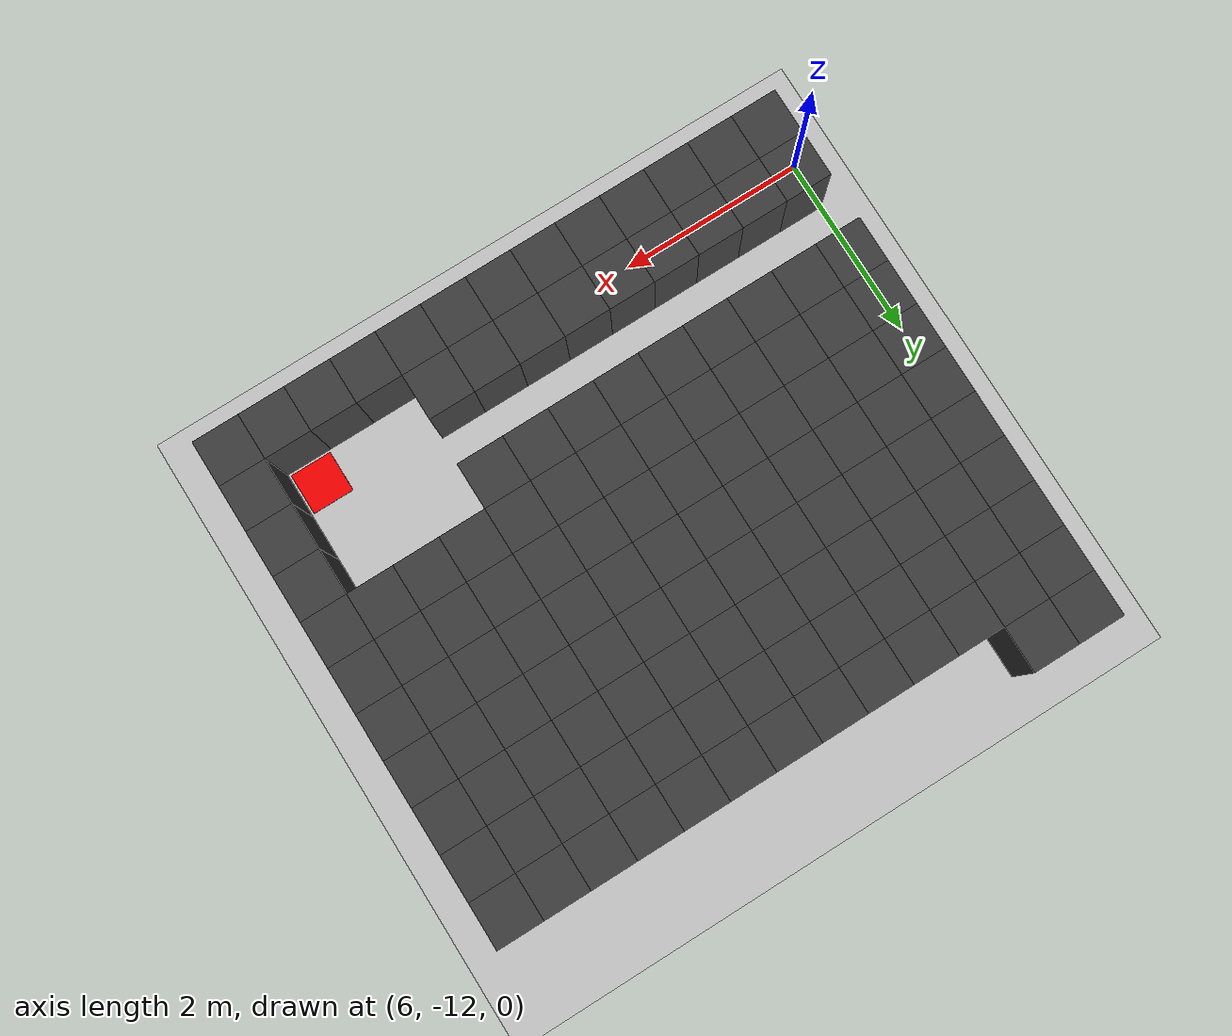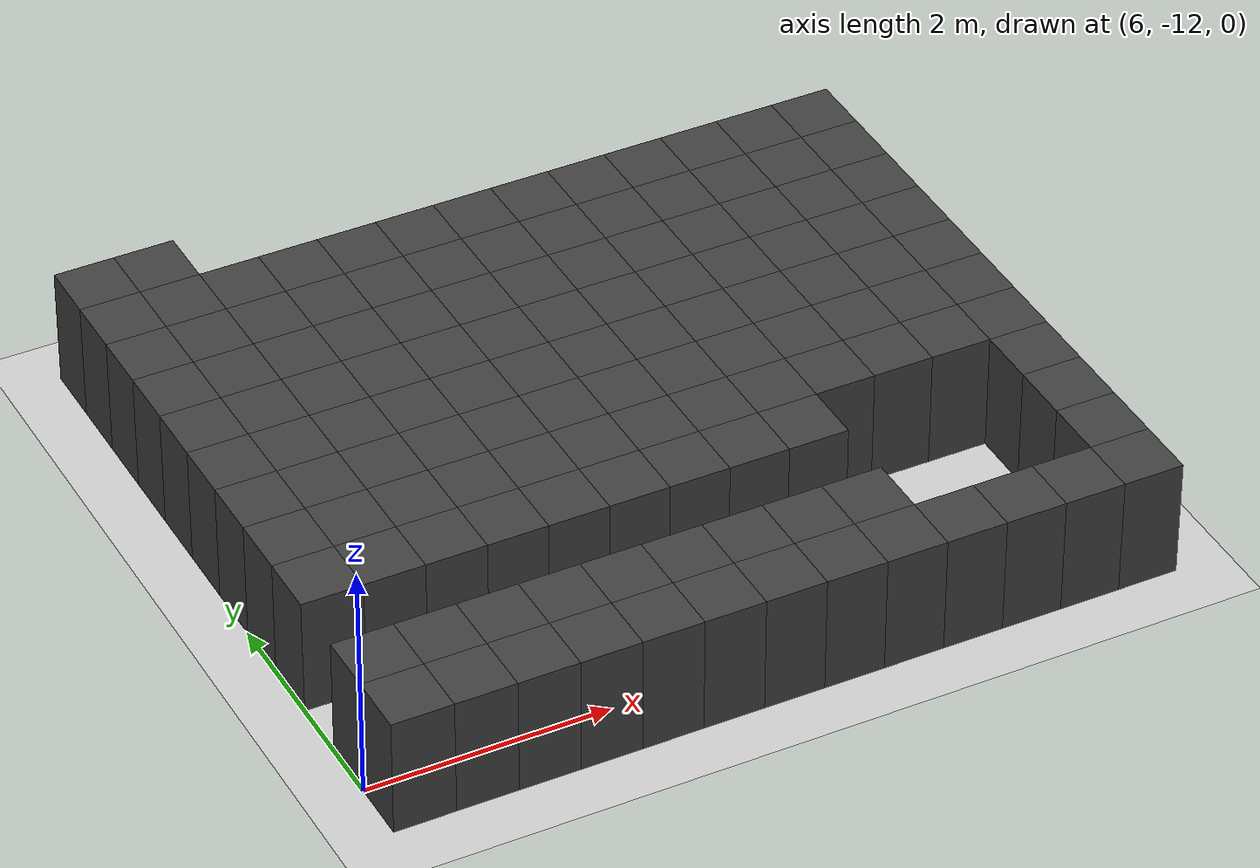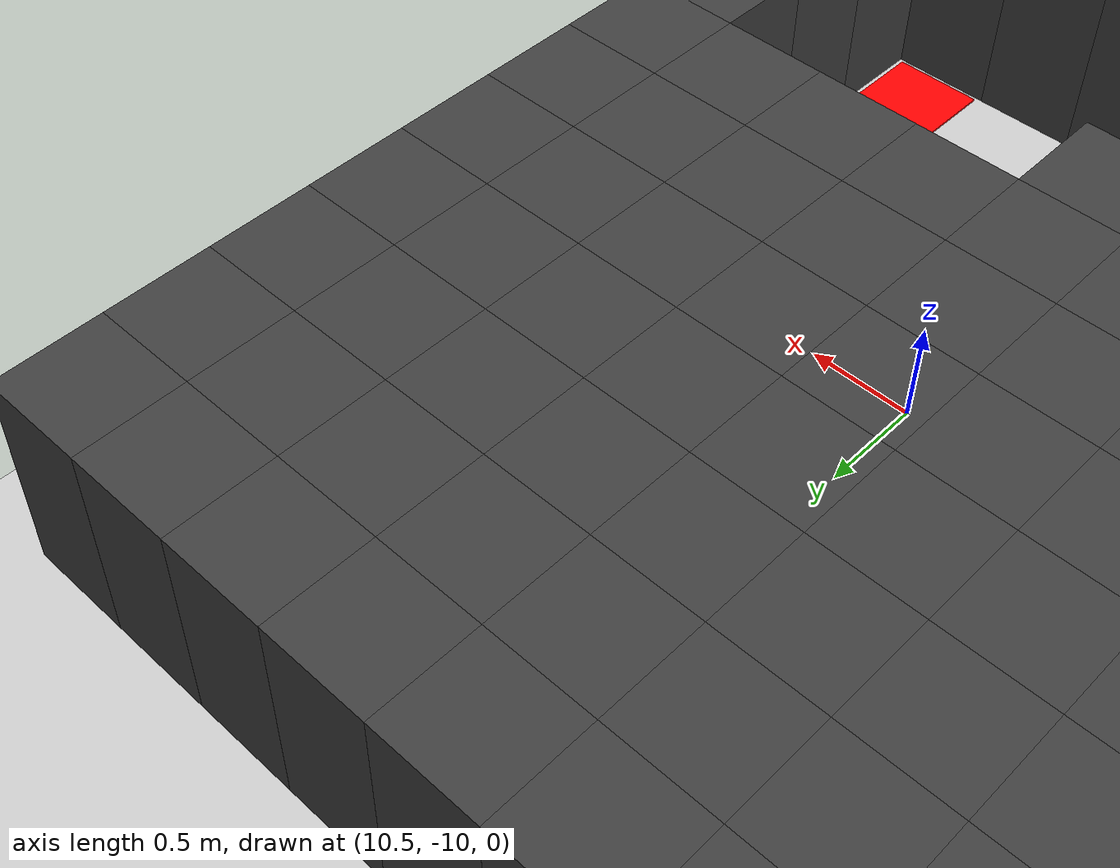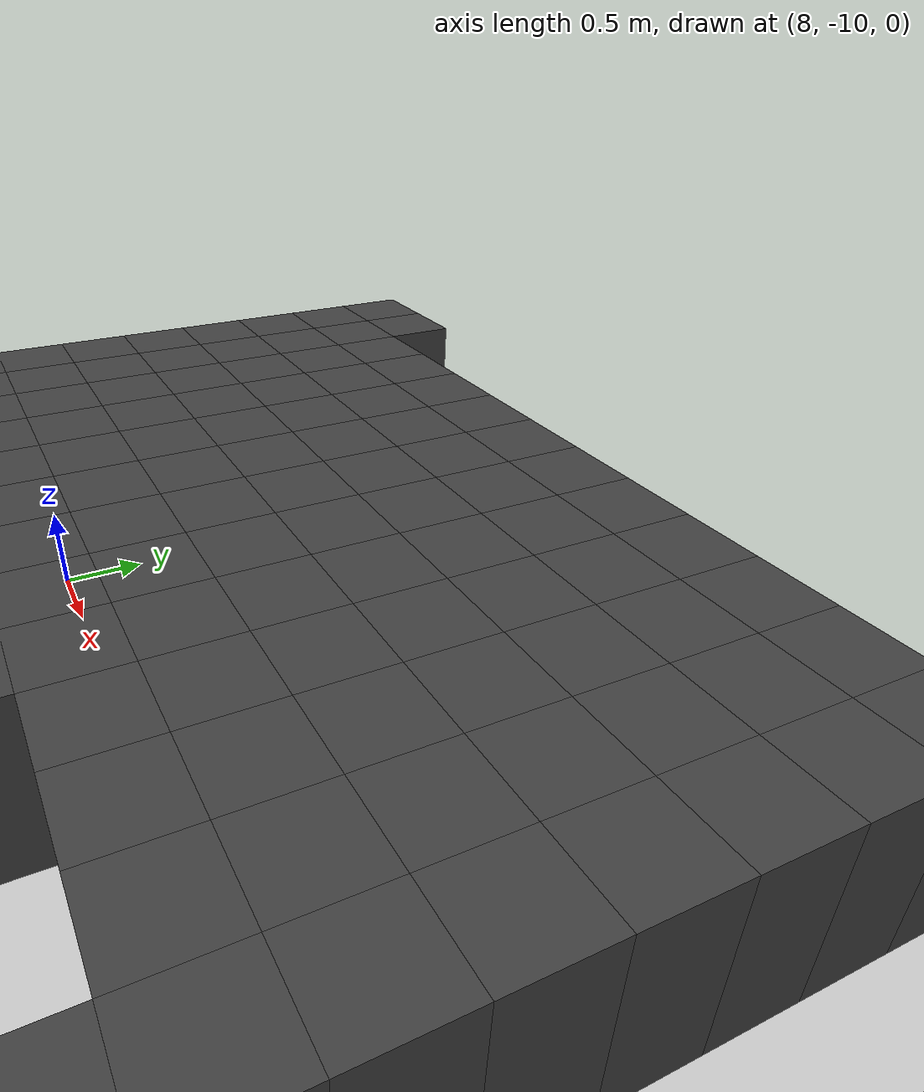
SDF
<sdf version="1.7">
 <world name="map_11515">
  <model name="ground_plane">
   <static>true</static>
   <link name="link">
    <collision name="collision">
     <geometry><plane><normal>0 0 1</normal><size>200 200</size></plane></geometry>
    </collision>
    <visual name="visual">
     <geometry><plane><normal>0 0 1</normal><size>200 200</size></plane></geometry>
     <material><ambient>0.8 0.8 0.8 1</ambient><diffuse>0.8 0.8 0.8 1</diffuse></material>
    </visual>
   </link>
  </model>
  <model name="maze_environment">
   <static>true</static>
   <link name="wall_1686">
    <pose>6.250 -6.750 0.500 0 0 0</pose>
    <collision name="col"><geometry><box><size>0.5 0.5 1.0</size></box></geometry></collision>
    <visual name="vis">
     <geometry><box><size>0.5 0.5 1.0</size></box></geometry>
     <material><ambient>0.15 0.15 0.15 1</ambient><diffuse>0.25 0.25 0.25 1</diffuse></material>
    </visual>
   </link>
   <link name="wall_1687">
    <pose>6.750 -6.750 0.500 0 0 0</pose>
    <collision name="col"><geometry><box><size>0.5 0.5 1.0</size></box></geometry></collision>
    <visual name="vis">
     <geometry><box><size>0.5 0.5 1.0</size></box></geometry>
     <material><ambient>0.15 0.15 0.15 1</ambient><diffuse>0.25 0.25 0.25 1</diffuse></material>
    </visual>
   </link>
   <link name="wall_1735">
    <pose>6.250 -7.250 0.500 0 0 0</pose>
    <collision name="col"><geometry><box><size>0.5 0.5 1.0</size></box></geometry></collision>
    <visual name="vis">
     <geometry><box><size>0.5 0.5 1.0</size></box></geometry>
     <material><ambient>0.15 0.15 0.15 1</ambient><diffuse>0.25 0.25 0.25 1</diffuse></material>
    </visual>
   </link>
   <link name="wall_1736">
    <pose>6.750 -7.250 0.500 0 0 0</pose>
    <collision name="col"><geometry><box><size>0.5 0.5 1.0</size></box></geometry></collision>
    <visual name="vis">
     <geometry><box><size>0.5 0.5 1.0</size></box></geometry>
     <material><ambient>0.15 0.15 0.15 1</ambient><diffuse>0.25 0.25 0.25 1</diffuse></material>
    </visual>
   </link>
   <link name="wall_1737">
    <pose>7.250 -7.250 0.500 0 0 0</pose>
    <collision name="col"><geometry><box><size>0.5 0.5 1.0</size></box></geometry></collision>
    <visual name="vis">
     <geometry><box><size>0.5 0.5 1.0</size></box></geometry>
     <material><ambient>0.15 0.15 0.15 1</ambient><diffuse>0.25 0.25 0.25 1</diffuse></material>
    </visual>
   </link>
   <link name="wall_1738">
    <pose>7.750 -7.250 0.500 0 0 0</pose>
    <collision name="col"><geometry><box><size>0.5 0.5 1.0</size></box></geometry></collision>
    <visual name="vis">
     <geometry><box><size>0.5 0.5 1.0</size></box></geometry>
     <material><ambient>0.15 0.15 0.15 1</ambient><diffuse>0.25 0.25 0.25 1</diffuse></material>
    </visual>
   </link>
   <link name="wall_1739">
    <pose>8.250 -7.250 0.500 0 0 0</pose>
    <collision name="col"><geometry><box><size>0.5 0.5 1.0</size></box></geometry></collision>
    <visual name="vis">
     <geometry><box><size>0.5 0.5 1.0</size></box></geometry>
     <material><ambient>0.15 0.15 0.15 1</ambient><diffuse>0.25 0.25 0.25 1</diffuse></material>
    </visual>
   </link>
   <link name="wall_1740">
    <pose>8.750 -7.250 0.500 0 0 0</pose>
    <collision name="col"><geometry><box><size>0.5 0.5 1.0</size></box></geometry></collision>
    <visual name="vis">
     <geometry><box><size>0.5 0.5 1.0</size></box></geometry>
     <material><ambient>0.15 0.15 0.15 1</ambient><diffuse>0.25 0.25 0.25 1</diffuse></material>
    </visual>
   </link>
   <link name="wall_1741">
    <pose>9.250 -7.250 0.500 0 0 0</pose>
    <collision name="col"><geometry><box><size>0.5 0.5 1.0</size></box></geometry></collision>
    <visual name="vis">
     <geometry><box><size>0.5 0.5 1.0</size></box></geometry>
     <material><ambient>0.15 0.15 0.15 1</ambient><diffuse>0.25 0.25 0.25 1</diffuse></material>
    </visual>
   </link>
   <link name="wall_1742">
    <pose>9.750 -7.250 0.500 0 0 0</pose>
    <collision name="col"><geometry><box><size>0.5 0.5 1.0</size></box></geometry></collision>
    <visual name="vis">
     <geometry><box><size>0.5 0.5 1.0</size></box></geometry>
     <material><ambient>0.15 0.15 0.15 1</ambient><diffuse>0.25 0.25 0.25 1</diffuse></material>
    </visual>
   </link>
   <link name="wall_1743">
    <pose>10.250 -7.250 0.500 0 0 0</pose>
    <collision name="col"><geometry><box><size>0.5 0.5 1.0</size></box></geometry></collision>
    <visual name="vis">
     <geometry><box><size>0.5 0.5 1.0</size></box></geometry>
     <material><ambient>0.15 0.15 0.15 1</ambient><diffuse>0.25 0.25 0.25 1</diffuse></material>
    </visual>
   </link>
   <link name="wall_1744">
    <pose>10.750 -7.250 0.500 0 0 0</pose>
    <collision name="col"><geometry><box><size>0.5 0.5 1.0</size></box></geometry></collision>
    <visual name="vis">
     <geometry><box><size>0.5 0.5 1.0</size></box></geometry>
     <material><ambient>0.15 0.15 0.15 1</ambient><diffuse>0.25 0.25 0.25 1</diffuse></material>
    </visual>
   </link>
   <link name="wall_1745">
    <pose>11.250 -7.250 0.500 0 0 0</pose>
    <collision name="col"><geometry><box><size>0.5 0.5 1.0</size></box></geometry></collision>
    <visual name="vis">
     <geometry><box><size>0.5 0.5 1.0</size></box></geometry>
     <material><ambient>0.15 0.15 0.15 1</ambient><diffuse>0.25 0.25 0.25 1</diffuse></material>
    </visual>
   </link>
   <link name="wall_1746">
    <pose>11.750 -7.250 0.500 0 0 0</pose>
    <collision name="col"><geometry><box><size>0.5 0.5 1.0</size></box></geometry></collision>
    <visual name="vis">
     <geometry><box><size>0.5 0.5 1.0</size></box></geometry>
     <material><ambient>0.15 0.15 0.15 1</ambient><diffuse>0.25 0.25 0.25 1</diffuse></material>
    </visual>
   </link>
   <link name="wall_1747">
    <pose>12.250 -7.250 0.500 0 0 0</pose>
    <collision name="col"><geometry><box><size>0.5 0.5 1.0</size></box></geometry></collision>
    <visual name="vis">
     <geometry><box><size>0.5 0.5 1.0</size></box></geometry>
     <material><ambient>0.15 0.15 0.15 1</ambient><diffuse>0.25 0.25 0.25 1</diffuse></material>
    </visual>
   </link>
   <link name="wall_1784">
    <pose>6.250 -7.750 0.500 0 0 0</pose>
    <collision name="col"><geometry><box><size>0.5 0.5 1.0</size></box></geometry></collision>
    <visual name="vis">
     <geometry><box><size>0.5 0.5 1.0</size></box></geometry>
     <material><ambient>0.15 0.15 0.15 1</ambient><diffuse>0.25 0.25 0.25 1</diffuse></material>
    </visual>
   </link>
   <link name="wall_1785">
    <pose>6.750 -7.750 0.500 0 0 0</pose>
    <collision name="col"><geometry><box><size>0.5 0.5 1.0</size></box></geometry></collision>
    <visual name="vis">
     <geometry><box><size>0.5 0.5 1.0</size></box></geometry>
     <material><ambient>0.15 0.15 0.15 1</ambient><diffuse>0.25 0.25 0.25 1</diffuse></material>
    </visual>
   </link>
   <link name="wall_1786">
    <pose>7.250 -7.750 0.500 0 0 0</pose>
    <collision name="col"><geometry><box><size>0.5 0.5 1.0</size></box></geometry></collision>
    <visual name="vis">
     <geometry><box><size>0.5 0.5 1.0</size></box></geometry>
     <material><ambient>0.15 0.15 0.15 1</ambient><diffuse>0.25 0.25 0.25 1</diffuse></material>
    </visual>
   </link>
   <link name="wall_1787">
    <pose>7.750 -7.750 0.500 0 0 0</pose>
    <collision name="col"><geometry><box><size>0.5 0.5 1.0</size></box></geometry></collision>
    <visual name="vis">
     <geometry><box><size>0.5 0.5 1.0</size></box></geometry>
     <material><ambient>0.15 0.15 0.15 1</ambient><diffuse>0.25 0.25 0.25 1</diffuse></material>
    </visual>
   </link>
   <link name="wall_1788">
    <pose>8.250 -7.750 0.500 0 0 0</pose>
    <collision name="col"><geometry><box><size>0.5 0.5 1.0</size></box></geometry></collision>
    <visual name="vis">
     <geometry><box><size>0.5 0.5 1.0</size></box></geometry>
     <material><ambient>0.15 0.15 0.15 1</ambient><diffuse>0.25 0.25 0.25 1</diffuse></material>
    </visual>
   </link>
   <link name="wall_1789">
    <pose>8.750 -7.750 0.500 0 0 0</pose>
    <collision name="col"><geometry><box><size>0.5 0.5 1.0</size></box></geometry></collision>
    <visual name="vis">
     <geometry><box><size>0.5 0.5 1.0</size></box></geometry>
     <material><ambient>0.15 0.15 0.15 1</ambient><diffuse>0.25 0.25 0.25 1</diffuse></material>
    </visual>
   </link>
   <link name="wall_1790">
    <pose>9.250 -7.750 0.500 0 0 0</pose>
    <collision name="col"><geometry><box><size>0.5 0.5 1.0</size></box></geometry></collision>
    <visual name="vis">
     <geometry><box><size>0.5 0.5 1.0</size></box></geometry>
     <material><ambient>0.15 0.15 0.15 1</ambient><diffuse>0.25 0.25 0.25 1</diffuse></material>
    </visual>
   </link>
   <link name="wall_1791">
    <pose>9.750 -7.750 0.500 0 0 0</pose>
    <collision name="col"><geometry><box><size>0.5 0.5 1.0</size></box></geometry></collision>
    <visual name="vis">
     <geometry><box><size>0.5 0.5 1.0</size></box></geometry>
     <material><ambient>0.15 0.15 0.15 1</ambient><diffuse>0.25 0.25 0.25 1</diffuse></material>
    </visual>
   </link>
   <link name="wall_1792">
    <pose>10.250 -7.750 0.500 0 0 0</pose>
    <collision name="col"><geometry><box><size>0.5 0.5 1.0</size></box></geometry></collision>
    <visual name="vis">
     <geometry><box><size>0.5 0.5 1.0</size></box></geometry>
     <material><ambient>0.15 0.15 0.15 1</ambient><diffuse>0.25 0.25 0.25 1</diffuse></material>
    </visual>
   </link>
   <link name="wall_1793">
    <pose>10.750 -7.750 0.500 0 0 0</pose>
    <collision name="col"><geometry><box><size>0.5 0.5 1.0</size></box></geometry></collision>
    <visual name="vis">
     <geometry><box><size>0.5 0.5 1.0</size></box></geometry>
     <material><ambient>0.15 0.15 0.15 1</ambient><diffuse>0.25 0.25 0.25 1</diffuse></material>
    </visual>
   </link>
   <link name="wall_1794">
    <pose>11.250 -7.750 0.500 0 0 0</pose>
    <collision name="col"><geometry><box><size>0.5 0.5 1.0</size></box></geometry></collision>
    <visual name="vis">
     <geometry><box><size>0.5 0.5 1.0</size></box></geometry>
     <material><ambient>0.15 0.15 0.15 1</ambient><diffuse>0.25 0.25 0.25 1</diffuse></material>
    </visual>
   </link>
   <link name="wall_1795">
    <pose>11.750 -7.750 0.500 0 0 0</pose>
    <collision name="col"><geometry><box><size>0.5 0.5 1.0</size></box></geometry></collision>
    <visual name="vis">
     <geometry><box><size>0.5 0.5 1.0</size></box></geometry>
     <material><ambient>0.15 0.15 0.15 1</ambient><diffuse>0.25 0.25 0.25 1</diffuse></material>
    </visual>
   </link>
   <link name="wall_1796">
    <pose>12.250 -7.750 0.500 0 0 0</pose>
    <collision name="col"><geometry><box><size>0.5 0.5 1.0</size></box></geometry></collision>
    <visual name="vis">
     <geometry><box><size>0.5 0.5 1.0</size></box></geometry>
     <material><ambient>0.15 0.15 0.15 1</ambient><diffuse>0.25 0.25 0.25 1</diffuse></material>
    </visual>
   </link>
   <link name="wall_1833">
    <pose>6.250 -8.250 0.500 0 0 0</pose>
    <collision name="col"><geometry><box><size>0.5 0.5 1.0</size></box></geometry></collision>
    <visual name="vis">
     <geometry><box><size>0.5 0.5 1.0</size></box></geometry>
     <material><ambient>0.15 0.15 0.15 1</ambient><diffuse>0.25 0.25 0.25 1</diffuse></material>
    </visual>
   </link>
   <link name="wall_1834">
    <pose>6.750 -8.250 0.500 0 0 0</pose>
    <collision name="col"><geometry><box><size>0.5 0.5 1.0</size></box></geometry></collision>
    <visual name="vis">
     <geometry><box><size>0.5 0.5 1.0</size></box></geometry>
     <material><ambient>0.15 0.15 0.15 1</ambient><diffuse>0.25 0.25 0.25 1</diffuse></material>
    </visual>
   </link>
   <link name="wall_1835">
    <pose>7.250 -8.250 0.500 0 0 0</pose>
    <collision name="col"><geometry><box><size>0.5 0.5 1.0</size></box></geometry></collision>
    <visual name="vis">
     <geometry><box><size>0.5 0.5 1.0</size></box></geometry>
     <material><ambient>0.15 0.15 0.15 1</ambient><diffuse>0.25 0.25 0.25 1</diffuse></material>
    </visual>
   </link>
   <link name="wall_1836">
    <pose>7.750 -8.250 0.500 0 0 0</pose>
    <collision name="col"><geometry><box><size>0.5 0.5 1.0</size></box></geometry></collision>
    <visual name="vis">
     <geometry><box><size>0.5 0.5 1.0</size></box></geometry>
     <material><ambient>0.15 0.15 0.15 1</ambient><diffuse>0.25 0.25 0.25 1</diffuse></material>
    </visual>
   </link>
   <link name="wall_1837">
    <pose>8.250 -8.250 0.500 0 0 0</pose>
    <collision name="col"><geometry><box><size>0.5 0.5 1.0</size></box></geometry></collision>
    <visual name="vis">
     <geometry><box><size>0.5 0.5 1.0</size></box></geometry>
     <material><ambient>0.15 0.15 0.15 1</ambient><diffuse>0.25 0.25 0.25 1</diffuse></material>
    </visual>
   </link>
   <link name="wall_1838">
    <pose>8.750 -8.250 0.500 0 0 0</pose>
    <collision name="col"><geometry><box><size>0.5 0.5 1.0</size></box></geometry></collision>
    <visual name="vis">
     <geometry><box><size>0.5 0.5 1.0</size></box></geometry>
     <material><ambient>0.15 0.15 0.15 1</ambient><diffuse>0.25 0.25 0.25 1</diffuse></material>
    </visual>
   </link>
   <link name="wall_1839">
    <pose>9.250 -8.250 0.500 0 0 0</pose>
    <collision name="col"><geometry><box><size>0.5 0.5 1.0</size></box></geometry></collision>
    <visual name="vis">
     <geometry><box><size>0.5 0.5 1.0</size></box></geometry>
     <material><ambient>0.15 0.15 0.15 1</ambient><diffuse>0.25 0.25 0.25 1</diffuse></material>
    </visual>
   </link>
   <link name="wall_1840">
    <pose>9.750 -8.250 0.500 0 0 0</pose>
    <collision name="col"><geometry><box><size>0.5 0.5 1.0</size></box></geometry></collision>
    <visual name="vis">
     <geometry><box><size>0.5 0.5 1.0</size></box></geometry>
     <material><ambient>0.15 0.15 0.15 1</ambient><diffuse>0.25 0.25 0.25 1</diffuse></material>
    </visual>
   </link>
   <link name="wall_1841">
    <pose>10.250 -8.250 0.500 0 0 0</pose>
    <collision name="col"><geometry><box><size>0.5 0.5 1.0</size></box></geometry></collision>
    <visual name="vis">
     <geometry><box><size>0.5 0.5 1.0</size></box></geometry>
     <material><ambient>0.15 0.15 0.15 1</ambient><diffuse>0.25 0.25 0.25 1</diffuse></material>
    </visual>
   </link>
   <link name="wall_1842">
    <pose>10.750 -8.250 0.500 0 0 0</pose>
    <collision name="col"><geometry><box><size>0.5 0.5 1.0</size></box></geometry></collision>
    <visual name="vis">
     <geometry><box><size>0.5 0.5 1.0</size></box></geometry>
     <material><ambient>0.15 0.15 0.15 1</ambient><diffuse>0.25 0.25 0.25 1</diffuse></material>
    </visual>
   </link>
   <link name="wall_1843">
    <pose>11.250 -8.250 0.500 0 0 0</pose>
    <collision name="col"><geometry><box><size>0.5 0.5 1.0</size></box></geometry></collision>
    <visual name="vis">
     <geometry><box><size>0.5 0.5 1.0</size></box></geometry>
     <material><ambient>0.15 0.15 0.15 1</ambient><diffuse>0.25 0.25 0.25 1</diffuse></material>
    </visual>
   </link>
   <link name="wall_1844">
    <pose>11.750 -8.250 0.500 0 0 0</pose>
    <collision name="col"><geometry><box><size>0.5 0.5 1.0</size></box></geometry></collision>
    <visual name="vis">
     <geometry><box><size>0.5 0.5 1.0</size></box></geometry>
     <material><ambient>0.15 0.15 0.15 1</ambient><diffuse>0.25 0.25 0.25 1</diffuse></material>
    </visual>
   </link>
   <link name="wall_1845">
    <pose>12.250 -8.250 0.500 0 0 0</pose>
    <collision name="col"><geometry><box><size>0.5 0.5 1.0</size></box></geometry></collision>
    <visual name="vis">
     <geometry><box><size>0.5 0.5 1.0</size></box></geometry>
     <material><ambient>0.15 0.15 0.15 1</ambient><diffuse>0.25 0.25 0.25 1</diffuse></material>
    </visual>
   </link>
   <link name="wall_1876">
    <pose>6.250 -8.750 0.500 0 0 0</pose>
    <collision name="col"><geometry><box><size>0.5 0.5 1.0</size></box></geometry></collision>
    <visual name="vis">
     <geometry><box><size>0.5 0.5 1.0</size></box></geometry>
     <material><ambient>0.15 0.15 0.15 1</ambient><diffuse>0.25 0.25 0.25 1</diffuse></material>
    </visual>
   </link>
   <link name="wall_1877">
    <pose>6.750 -8.750 0.500 0 0 0</pose>
    <collision name="col"><geometry><box><size>0.5 0.5 1.0</size></box></geometry></collision>
    <visual name="vis">
     <geometry><box><size>0.5 0.5 1.0</size></box></geometry>
     <material><ambient>0.15 0.15 0.15 1</ambient><diffuse>0.25 0.25 0.25 1</diffuse></material>
    </visual>
   </link>
   <link name="wall_1878">
    <pose>7.250 -8.750 0.500 0 0 0</pose>
    <collision name="col"><geometry><box><size>0.5 0.5 1.0</size></box></geometry></collision>
    <visual name="vis">
     <geometry><box><size>0.5 0.5 1.0</size></box></geometry>
     <material><ambient>0.15 0.15 0.15 1</ambient><diffuse>0.25 0.25 0.25 1</diffuse></material>
    </visual>
   </link>
   <link name="wall_1879">
    <pose>7.750 -8.750 0.500 0 0 0</pose>
    <collision name="col"><geometry><box><size>0.5 0.5 1.0</size></box></geometry></collision>
    <visual name="vis">
     <geometry><box><size>0.5 0.5 1.0</size></box></geometry>
     <material><ambient>0.15 0.15 0.15 1</ambient><diffuse>0.25 0.25 0.25 1</diffuse></material>
    </visual>
   </link>
   <link name="wall_1880">
    <pose>8.250 -8.750 0.500 0 0 0</pose>
    <collision name="col"><geometry><box><size>0.5 0.5 1.0</size></box></geometry></collision>
    <visual name="vis">
     <geometry><box><size>0.5 0.5 1.0</size></box></geometry>
     <material><ambient>0.15 0.15 0.15 1</ambient><diffuse>0.25 0.25 0.25 1</diffuse></material>
    </visual>
   </link>
   <link name="wall_1881">
    <pose>8.750 -8.750 0.500 0 0 0</pose>
    <collision name="col"><geometry><box><size>0.5 0.5 1.0</size></box></geometry></collision>
    <visual name="vis">
     <geometry><box><size>0.5 0.5 1.0</size></box></geometry>
     <material><ambient>0.15 0.15 0.15 1</ambient><diffuse>0.25 0.25 0.25 1</diffuse></material>
    </visual>
   </link>
   <link name="wall_1882">
    <pose>9.250 -8.750 0.500 0 0 0</pose>
    <collision name="col"><geometry><box><size>0.5 0.5 1.0</size></box></geometry></collision>
    <visual name="vis">
     <geometry><box><size>0.5 0.5 1.0</size></box></geometry>
     <material><ambient>0.15 0.15 0.15 1</ambient><diffuse>0.25 0.25 0.25 1</diffuse></material>
    </visual>
   </link>
   <link name="wall_1883">
    <pose>9.750 -8.750 0.500 0 0 0</pose>
    <collision name="col"><geometry><box><size>0.5 0.5 1.0</size></box></geometry></collision>
    <visual name="vis">
     <geometry><box><size>0.5 0.5 1.0</size></box></geometry>
     <material><ambient>0.15 0.15 0.15 1</ambient><diffuse>0.25 0.25 0.25 1</diffuse></material>
    </visual>
   </link>
   <link name="wall_1884">
    <pose>10.250 -8.750 0.500 0 0 0</pose>
    <collision name="col"><geometry><box><size>0.5 0.5 1.0</size></box></geometry></collision>
    <visual name="vis">
     <geometry><box><size>0.5 0.5 1.0</size></box></geometry>
     <material><ambient>0.15 0.15 0.15 1</ambient><diffuse>0.25 0.25 0.25 1</diffuse></material>
    </visual>
   </link>
   <link name="wall_1885">
    <pose>10.750 -8.750 0.500 0 0 0</pose>
    <collision name="col"><geometry><box><size>0.5 0.5 1.0</size></box></geometry></collision>
    <visual name="vis">
     <geometry><box><size>0.5 0.5 1.0</size></box></geometry>
     <material><ambient>0.15 0.15 0.15 1</ambient><diffuse>0.25 0.25 0.25 1</diffuse></material>
    </visual>
   </link>
   <link name="wall_1886">
    <pose>11.250 -8.750 0.500 0 0 0</pose>
    <collision name="col"><geometry><box><size>0.5 0.5 1.0</size></box></geometry></collision>
    <visual name="vis">
     <geometry><box><size>0.5 0.5 1.0</size></box></geometry>
     <material><ambient>0.15 0.15 0.15 1</ambient><diffuse>0.25 0.25 0.25 1</diffuse></material>
    </visual>
   </link>
   <link name="wall_1887">
    <pose>11.750 -8.750 0.500 0 0 0</pose>
    <collision name="col"><geometry><box><size>0.5 0.5 1.0</size></box></geometry></collision>
    <visual name="vis">
     <geometry><box><size>0.5 0.5 1.0</size></box></geometry>
     <material><ambient>0.15 0.15 0.15 1</ambient><diffuse>0.25 0.25 0.25 1</diffuse></material>
    </visual>
   </link>
   <link name="wall_1888">
    <pose>12.250 -8.750 0.500 0 0 0</pose>
    <collision name="col"><geometry><box><size>0.5 0.5 1.0</size></box></geometry></collision>
    <visual name="vis">
     <geometry><box><size>0.5 0.5 1.0</size></box></geometry>
     <material><ambient>0.15 0.15 0.15 1</ambient><diffuse>0.25 0.25 0.25 1</diffuse></material>
    </visual>
   </link>
   <link name="wall_1919">
    <pose>6.250 -9.250 0.500 0 0 0</pose>
    <collision name="col"><geometry><box><size>0.5 0.5 1.0</size></box></geometry></collision>
    <visual name="vis">
     <geometry><box><size>0.5 0.5 1.0</size></box></geometry>
     <material><ambient>0.15 0.15 0.15 1</ambient><diffuse>0.25 0.25 0.25 1</diffuse></material>
    </visual>
   </link>
   <link name="wall_1920">
    <pose>6.750 -9.250 0.500 0 0 0</pose>
    <collision name="col"><geometry><box><size>0.5 0.5 1.0</size></box></geometry></collision>
    <visual name="vis">
     <geometry><box><size>0.5 0.5 1.0</size></box></geometry>
     <material><ambient>0.15 0.15 0.15 1</ambient><diffuse>0.25 0.25 0.25 1</diffuse></material>
    </visual>
   </link>
   <link name="wall_1921">
    <pose>7.250 -9.250 0.500 0 0 0</pose>
    <collision name="col"><geometry><box><size>0.5 0.5 1.0</size></box></geometry></collision>
    <visual name="vis">
     <geometry><box><size>0.5 0.5 1.0</size></box></geometry>
     <material><ambient>0.15 0.15 0.15 1</ambient><diffuse>0.25 0.25 0.25 1</diffuse></material>
    </visual>
   </link>
   <link name="wall_1922">
    <pose>7.750 -9.250 0.500 0 0 0</pose>
    <collision name="col"><geometry><box><size>0.5 0.5 1.0</size></box></geometry></collision>
    <visual name="vis">
     <geometry><box><size>0.5 0.5 1.0</size></box></geometry>
     <material><ambient>0.15 0.15 0.15 1</ambient><diffuse>0.25 0.25 0.25 1</diffuse></material>
    </visual>
   </link>
   <link name="wall_1923">
    <pose>8.250 -9.250 0.500 0 0 0</pose>
    <collision name="col"><geometry><box><size>0.5 0.5 1.0</size></box></geometry></collision>
    <visual name="vis">
     <geometry><box><size>0.5 0.5 1.0</size></box></geometry>
     <material><ambient>0.15 0.15 0.15 1</ambient><diffuse>0.25 0.25 0.25 1</diffuse></material>
    </visual>
   </link>
   <link name="wall_1924">
    <pose>8.750 -9.250 0.500 0 0 0</pose>
    <collision name="col"><geometry><box><size>0.5 0.5 1.0</size></box></geometry></collision>
    <visual name="vis">
     <geometry><box><size>0.5 0.5 1.0</size></box></geometry>
     <material><ambient>0.15 0.15 0.15 1</ambient><diffuse>0.25 0.25 0.25 1</diffuse></material>
    </visual>
   </link>
   <link name="wall_1925">
    <pose>9.250 -9.250 0.500 0 0 0</pose>
    <collision name="col"><geometry><box><size>0.5 0.5 1.0</size></box></geometry></collision>
    <visual name="vis">
     <geometry><box><size>0.5 0.5 1.0</size></box></geometry>
     <material><ambient>0.15 0.15 0.15 1</ambient><diffuse>0.25 0.25 0.25 1</diffuse></material>
    </visual>
   </link>
   <link name="wall_1926">
    <pose>9.750 -9.250 0.500 0 0 0</pose>
    <collision name="col"><geometry><box><size>0.5 0.5 1.0</size></box></geometry></collision>
    <visual name="vis">
     <geometry><box><size>0.5 0.5 1.0</size></box></geometry>
     <material><ambient>0.15 0.15 0.15 1</ambient><diffuse>0.25 0.25 0.25 1</diffuse></material>
    </visual>
   </link>
   <link name="wall_1927">
    <pose>10.250 -9.250 0.500 0 0 0</pose>
    <collision name="col"><geometry><box><size>0.5 0.5 1.0</size></box></geometry></collision>
    <visual name="vis">
     <geometry><box><size>0.5 0.5 1.0</size></box></geometry>
     <material><ambient>0.15 0.15 0.15 1</ambient><diffuse>0.25 0.25 0.25 1</diffuse></material>
    </visual>
   </link>
   <link name="wall_1928">
    <pose>10.750 -9.250 0.500 0 0 0</pose>
    <collision name="col"><geometry><box><size>0.5 0.5 1.0</size></box></geometry></collision>
    <visual name="vis">
     <geometry><box><size>0.5 0.5 1.0</size></box></geometry>
     <material><ambient>0.15 0.15 0.15 1</ambient><diffuse>0.25 0.25 0.25 1</diffuse></material>
    </visual>
   </link>
   <link name="wall_1929">
    <pose>11.250 -9.250 0.500 0 0 0</pose>
    <collision name="col"><geometry><box><size>0.5 0.5 1.0</size></box></geometry></collision>
    <visual name="vis">
     <geometry><box><size>0.5 0.5 1.0</size></box></geometry>
     <material><ambient>0.15 0.15 0.15 1</ambient><diffuse>0.25 0.25 0.25 1</diffuse></material>
    </visual>
   </link>
   <link name="wall_1930">
    <pose>11.750 -9.250 0.500 0 0 0</pose>
    <collision name="col"><geometry><box><size>0.5 0.5 1.0</size></box></geometry></collision>
    <visual name="vis">
     <geometry><box><size>0.5 0.5 1.0</size></box></geometry>
     <material><ambient>0.15 0.15 0.15 1</ambient><diffuse>0.25 0.25 0.25 1</diffuse></material>
    </visual>
   </link>
   <link name="wall_1931">
    <pose>12.250 -9.250 0.500 0 0 0</pose>
    <collision name="col"><geometry><box><size>0.5 0.5 1.0</size></box></geometry></collision>
    <visual name="vis">
     <geometry><box><size>0.5 0.5 1.0</size></box></geometry>
     <material><ambient>0.15 0.15 0.15 1</ambient><diffuse>0.25 0.25 0.25 1</diffuse></material>
    </visual>
   </link>
   <link name="wall_1961">
    <pose>6.250 -9.750 0.500 0 0 0</pose>
    <collision name="col"><geometry><box><size>0.5 0.5 1.0</size></box></geometry></collision>
    <visual name="vis">
     <geometry><box><size>0.5 0.5 1.0</size></box></geometry>
     <material><ambient>0.15 0.15 0.15 1</ambient><diffuse>0.25 0.25 0.25 1</diffuse></material>
    </visual>
   </link>
   <link name="wall_1962">
    <pose>6.750 -9.750 0.500 0 0 0</pose>
    <collision name="col"><geometry><box><size>0.5 0.5 1.0</size></box></geometry></collision>
    <visual name="vis">
     <geometry><box><size>0.5 0.5 1.0</size></box></geometry>
     <material><ambient>0.15 0.15 0.15 1</ambient><diffuse>0.25 0.25 0.25 1</diffuse></material>
    </visual>
   </link>
   <link name="wall_1963">
    <pose>7.250 -9.750 0.500 0 0 0</pose>
    <collision name="col"><geometry><box><size>0.5 0.5 1.0</size></box></geometry></collision>
    <visual name="vis">
     <geometry><box><size>0.5 0.5 1.0</size></box></geometry>
     <material><ambient>0.15 0.15 0.15 1</ambient><diffuse>0.25 0.25 0.25 1</diffuse></material>
    </visual>
   </link>
   <link name="wall_1964">
    <pose>7.750 -9.750 0.500 0 0 0</pose>
    <collision name="col"><geometry><box><size>0.5 0.5 1.0</size></box></geometry></collision>
    <visual name="vis">
     <geometry><box><size>0.5 0.5 1.0</size></box></geometry>
     <material><ambient>0.15 0.15 0.15 1</ambient><diffuse>0.25 0.25 0.25 1</diffuse></material>
    </visual>
   </link>
   <link name="wall_1965">
    <pose>8.250 -9.750 0.500 0 0 0</pose>
    <collision name="col"><geometry><box><size>0.5 0.5 1.0</size></box></geometry></collision>
    <visual name="vis">
     <geometry><box><size>0.5 0.5 1.0</size></box></geometry>
     <material><ambient>0.15 0.15 0.15 1</ambient><diffuse>0.25 0.25 0.25 1</diffuse></material>
    </visual>
   </link>
   <link name="wall_1966">
    <pose>8.750 -9.750 0.500 0 0 0</pose>
    <collision name="col"><geometry><box><size>0.5 0.5 1.0</size></box></geometry></collision>
    <visual name="vis">
     <geometry><box><size>0.5 0.5 1.0</size></box></geometry>
     <material><ambient>0.15 0.15 0.15 1</ambient><diffuse>0.25 0.25 0.25 1</diffuse></material>
    </visual>
   </link>
   <link name="wall_1967">
    <pose>9.250 -9.750 0.500 0 0 0</pose>
    <collision name="col"><geometry><box><size>0.5 0.5 1.0</size></box></geometry></collision>
    <visual name="vis">
     <geometry><box><size>0.5 0.5 1.0</size></box></geometry>
     <material><ambient>0.15 0.15 0.15 1</ambient><diffuse>0.25 0.25 0.25 1</diffuse></material>
    </visual>
   </link>
   <link name="wall_1968">
    <pose>9.750 -9.750 0.500 0 0 0</pose>
    <collision name="col"><geometry><box><size>0.5 0.5 1.0</size></box></geometry></collision>
    <visual name="vis">
     <geometry><box><size>0.5 0.5 1.0</size></box></geometry>
     <material><ambient>0.15 0.15 0.15 1</ambient><diffuse>0.25 0.25 0.25 1</diffuse></material>
    </visual>
   </link>
   <link name="wall_1969">
    <pose>10.250 -9.750 0.500 0 0 0</pose>
    <collision name="col"><geometry><box><size>0.5 0.5 1.0</size></box></geometry></collision>
    <visual name="vis">
     <geometry><box><size>0.5 0.5 1.0</size></box></geometry>
     <material><ambient>0.15 0.15 0.15 1</ambient><diffuse>0.25 0.25 0.25 1</diffuse></material>
    </visual>
   </link>
   <link name="wall_1970">
    <pose>10.750 -9.750 0.500 0 0 0</pose>
    <collision name="col"><geometry><box><size>0.5 0.5 1.0</size></box></geometry></collision>
    <visual name="vis">
     <geometry><box><size>0.5 0.5 1.0</size></box></geometry>
     <material><ambient>0.15 0.15 0.15 1</ambient><diffuse>0.25 0.25 0.25 1</diffuse></material>
    </visual>
   </link>
   <link name="wall_1971">
    <pose>11.250 -9.750 0.500 0 0 0</pose>
    <collision name="col"><geometry><box><size>0.5 0.5 1.0</size></box></geometry></collision>
    <visual name="vis">
     <geometry><box><size>0.5 0.5 1.0</size></box></geometry>
     <material><ambient>0.15 0.15 0.15 1</ambient><diffuse>0.25 0.25 0.25 1</diffuse></material>
    </visual>
   </link>
   <link name="wall_1972">
    <pose>11.750 -9.750 0.500 0 0 0</pose>
    <collision name="col"><geometry><box><size>0.5 0.5 1.0</size></box></geometry></collision>
    <visual name="vis">
     <geometry><box><size>0.5 0.5 1.0</size></box></geometry>
     <material><ambient>0.15 0.15 0.15 1</ambient><diffuse>0.25 0.25 0.25 1</diffuse></material>
    </visual>
   </link>
   <link name="wall_1973">
    <pose>12.250 -9.750 0.500 0 0 0</pose>
    <collision name="col"><geometry><box><size>0.5 0.5 1.0</size></box></geometry></collision>
    <visual name="vis">
     <geometry><box><size>0.5 0.5 1.0</size></box></geometry>
     <material><ambient>0.15 0.15 0.15 1</ambient><diffuse>0.25 0.25 0.25 1</diffuse></material>
    </visual>
   </link>
   <link name="wall_2005">
    <pose>6.250 -10.250 0.500 0 0 0</pose>
    <collision name="col"><geometry><box><size>0.5 0.5 1.0</size></box></geometry></collision>
    <visual name="vis">
     <geometry><box><size>0.5 0.5 1.0</size></box></geometry>
     <material><ambient>0.15 0.15 0.15 1</ambient><diffuse>0.25 0.25 0.25 1</diffuse></material>
    </visual>
   </link>
   <link name="wall_2006">
    <pose>6.750 -10.250 0.500 0 0 0</pose>
    <collision name="col"><geometry><box><size>0.5 0.5 1.0</size></box></geometry></collision>
    <visual name="vis">
     <geometry><box><size>0.5 0.5 1.0</size></box></geometry>
     <material><ambient>0.15 0.15 0.15 1</ambient><diffuse>0.25 0.25 0.25 1</diffuse></material>
    </visual>
   </link>
   <link name="wall_2007">
    <pose>7.250 -10.250 0.500 0 0 0</pose>
    <collision name="col"><geometry><box><size>0.5 0.5 1.0</size></box></geometry></collision>
    <visual name="vis">
     <geometry><box><size>0.5 0.5 1.0</size></box></geometry>
     <material><ambient>0.15 0.15 0.15 1</ambient><diffuse>0.25 0.25 0.25 1</diffuse></material>
    </visual>
   </link>
   <link name="wall_2008">
    <pose>7.750 -10.250 0.500 0 0 0</pose>
    <collision name="col"><geometry><box><size>0.5 0.5 1.0</size></box></geometry></collision>
    <visual name="vis">
     <geometry><box><size>0.5 0.5 1.0</size></box></geometry>
     <material><ambient>0.15 0.15 0.15 1</ambient><diffuse>0.25 0.25 0.25 1</diffuse></material>
    </visual>
   </link>
   <link name="wall_2009">
    <pose>8.250 -10.250 0.500 0 0 0</pose>
    <collision name="col"><geometry><box><size>0.5 0.5 1.0</size></box></geometry></collision>
    <visual name="vis">
     <geometry><box><size>0.5 0.5 1.0</size></box></geometry>
     <material><ambient>0.15 0.15 0.15 1</ambient><diffuse>0.25 0.25 0.25 1</diffuse></material>
    </visual>
   </link>
   <link name="wall_2010">
    <pose>8.750 -10.250 0.500 0 0 0</pose>
    <collision name="col"><geometry><box><size>0.5 0.5 1.0</size></box></geometry></collision>
    <visual name="vis">
     <geometry><box><size>0.5 0.5 1.0</size></box></geometry>
     <material><ambient>0.15 0.15 0.15 1</ambient><diffuse>0.25 0.25 0.25 1</diffuse></material>
    </visual>
   </link>
   <link name="wall_2011">
    <pose>9.250 -10.250 0.500 0 0 0</pose>
    <collision name="col"><geometry><box><size>0.5 0.5 1.0</size></box></geometry></collision>
    <visual name="vis">
     <geometry><box><size>0.5 0.5 1.0</size></box></geometry>
     <material><ambient>0.15 0.15 0.15 1</ambient><diffuse>0.25 0.25 0.25 1</diffuse></material>
    </visual>
   </link>
   <link name="wall_2012">
    <pose>9.750 -10.250 0.500 0 0 0</pose>
    <collision name="col"><geometry><box><size>0.5 0.5 1.0</size></box></geometry></collision>
    <visual name="vis">
     <geometry><box><size>0.5 0.5 1.0</size></box></geometry>
     <material><ambient>0.15 0.15 0.15 1</ambient><diffuse>0.25 0.25 0.25 1</diffuse></material>
    </visual>
   </link>
   <link name="wall_2013">
    <pose>10.250 -10.250 0.500 0 0 0</pose>
    <collision name="col"><geometry><box><size>0.5 0.5 1.0</size></box></geometry></collision>
    <visual name="vis">
     <geometry><box><size>0.5 0.5 1.0</size></box></geometry>
     <material><ambient>0.15 0.15 0.15 1</ambient><diffuse>0.25 0.25 0.25 1</diffuse></material>
    </visual>
   </link>
   <link name="wall_2014">
    <pose>10.750 -10.250 0.500 0 0 0</pose>
    <collision name="col"><geometry><box><size>0.5 0.5 1.0</size></box></geometry></collision>
    <visual name="vis">
     <geometry><box><size>0.5 0.5 1.0</size></box></geometry>
     <material><ambient>0.15 0.15 0.15 1</ambient><diffuse>0.25 0.25 0.25 1</diffuse></material>
    </visual>
   </link>
   <link name="wall_2015">
    <pose>11.250 -10.250 0.500 0 0 0</pose>
    <collision name="col"><geometry><box><size>0.5 0.5 1.0</size></box></geometry></collision>
    <visual name="vis">
     <geometry><box><size>0.5 0.5 1.0</size></box></geometry>
     <material><ambient>0.15 0.15 0.15 1</ambient><diffuse>0.25 0.25 0.25 1</diffuse></material>
    </visual>
   </link>
   <link name="wall_2016">
    <pose>11.750 -10.250 0.500 0 0 0</pose>
    <collision name="col"><geometry><box><size>0.5 0.5 1.0</size></box></geometry></collision>
    <visual name="vis">
     <geometry><box><size>0.5 0.5 1.0</size></box></geometry>
     <material><ambient>0.15 0.15 0.15 1</ambient><diffuse>0.25 0.25 0.25 1</diffuse></material>
    </visual>
   </link>
   <link name="wall_2017">
    <pose>12.250 -10.250 0.500 0 0 0</pose>
    <collision name="col"><geometry><box><size>0.5 0.5 1.0</size></box></geometry></collision>
    <visual name="vis">
     <geometry><box><size>0.5 0.5 1.0</size></box></geometry>
     <material><ambient>0.15 0.15 0.15 1</ambient><diffuse>0.25 0.25 0.25 1</diffuse></material>
    </visual>
   </link>
   <link name="wall_2049">
    <pose>6.250 -10.750 0.500 0 0 0</pose>
    <collision name="col"><geometry><box><size>0.5 0.5 1.0</size></box></geometry></collision>
    <visual name="vis">
     <geometry><box><size>0.5 0.5 1.0</size></box></geometry>
     <material><ambient>0.15 0.15 0.15 1</ambient><diffuse>0.25 0.25 0.25 1</diffuse></material>
    </visual>
   </link>
   <link name="wall_2050">
    <pose>6.750 -10.750 0.500 0 0 0</pose>
    <collision name="col"><geometry><box><size>0.5 0.5 1.0</size></box></geometry></collision>
    <visual name="vis">
     <geometry><box><size>0.5 0.5 1.0</size></box></geometry>
     <material><ambient>0.15 0.15 0.15 1</ambient><diffuse>0.25 0.25 0.25 1</diffuse></material>
    </visual>
   </link>
   <link name="wall_2051">
    <pose>7.250 -10.750 0.500 0 0 0</pose>
    <collision name="col"><geometry><box><size>0.5 0.5 1.0</size></box></geometry></collision>
    <visual name="vis">
     <geometry><box><size>0.5 0.5 1.0</size></box></geometry>
     <material><ambient>0.15 0.15 0.15 1</ambient><diffuse>0.25 0.25 0.25 1</diffuse></material>
    </visual>
   </link>
   <link name="wall_2052">
    <pose>7.750 -10.750 0.500 0 0 0</pose>
    <collision name="col"><geometry><box><size>0.5 0.5 1.0</size></box></geometry></collision>
    <visual name="vis">
     <geometry><box><size>0.5 0.5 1.0</size></box></geometry>
     <material><ambient>0.15 0.15 0.15 1</ambient><diffuse>0.25 0.25 0.25 1</diffuse></material>
    </visual>
   </link>
   <link name="wall_2053">
    <pose>8.250 -10.750 0.500 0 0 0</pose>
    <collision name="col"><geometry><box><size>0.5 0.5 1.0</size></box></geometry></collision>
    <visual name="vis">
     <geometry><box><size>0.5 0.5 1.0</size></box></geometry>
     <material><ambient>0.15 0.15 0.15 1</ambient><diffuse>0.25 0.25 0.25 1</diffuse></material>
    </visual>
   </link>
   <link name="wall_2054">
    <pose>8.750 -10.750 0.500 0 0 0</pose>
    <collision name="col"><geometry><box><size>0.5 0.5 1.0</size></box></geometry></collision>
    <visual name="vis">
     <geometry><box><size>0.5 0.5 1.0</size></box></geometry>
     <material><ambient>0.15 0.15 0.15 1</ambient><diffuse>0.25 0.25 0.25 1</diffuse></material>
    </visual>
   </link>
   <link name="wall_2055">
    <pose>9.250 -10.750 0.500 0 0 0</pose>
    <collision name="col"><geometry><box><size>0.5 0.5 1.0</size></box></geometry></collision>
    <visual name="vis">
     <geometry><box><size>0.5 0.5 1.0</size></box></geometry>
     <material><ambient>0.15 0.15 0.15 1</ambient><diffuse>0.25 0.25 0.25 1</diffuse></material>
    </visual>
   </link>
   <link name="wall_2056">
    <pose>9.750 -10.750 0.500 0 0 0</pose>
    <collision name="col"><geometry><box><size>0.5 0.5 1.0</size></box></geometry></collision>
    <visual name="vis">
     <geometry><box><size>0.5 0.5 1.0</size></box></geometry>
     <material><ambient>0.15 0.15 0.15 1</ambient><diffuse>0.25 0.25 0.25 1</diffuse></material>
    </visual>
   </link>
   <link name="wall_2057">
    <pose>10.250 -10.750 0.500 0 0 0</pose>
    <collision name="col"><geometry><box><size>0.5 0.5 1.0</size></box></geometry></collision>
    <visual name="vis">
     <geometry><box><size>0.5 0.5 1.0</size></box></geometry>
     <material><ambient>0.15 0.15 0.15 1</ambient><diffuse>0.25 0.25 0.25 1</diffuse></material>
    </visual>
   </link>
   <link name="wall_2058">
    <pose>12.250 -10.750 0.500 0 0 0</pose>
    <collision name="col"><geometry><box><size>0.5 0.5 1.0</size></box></geometry></collision>
    <visual name="vis">
     <geometry><box><size>0.5 0.5 1.0</size></box></geometry>
     <material><ambient>0.15 0.15 0.15 1</ambient><diffuse>0.25 0.25 0.25 1</diffuse></material>
    </visual>
   </link>
   <link name="wall_2078">
    <pose>12.250 -11.250 0.500 0 0 0</pose>
    <collision name="col"><geometry><box><size>0.5 0.5 1.0</size></box></geometry></collision>
    <visual name="vis">
     <geometry><box><size>0.5 0.5 1.0</size></box></geometry>
     <material><ambient>0.15 0.15 0.15 1</ambient><diffuse>0.25 0.25 0.25 1</diffuse></material>
    </visual>
   </link>
   <link name="wall_2116">
    <pose>6.250 -11.750 0.500 0 0 0</pose>
    <collision name="col"><geometry><box><size>0.5 0.5 1.0</size></box></geometry></collision>
    <visual name="vis">
     <geometry><box><size>0.5 0.5 1.0</size></box></geometry>
     <material><ambient>0.15 0.15 0.15 1</ambient><diffuse>0.25 0.25 0.25 1</diffuse></material>
    </visual>
   </link>
   <link name="wall_2117">
    <pose>6.750 -11.750 0.500 0 0 0</pose>
    <collision name="col"><geometry><box><size>0.5 0.5 1.0</size></box></geometry></collision>
    <visual name="vis">
     <geometry><box><size>0.5 0.5 1.0</size></box></geometry>
     <material><ambient>0.15 0.15 0.15 1</ambient><diffuse>0.25 0.25 0.25 1</diffuse></material>
    </visual>
   </link>
   <link name="wall_2118">
    <pose>7.250 -11.750 0.500 0 0 0</pose>
    <collision name="col"><geometry><box><size>0.5 0.5 1.0</size></box></geometry></collision>
    <visual name="vis">
     <geometry><box><size>0.5 0.5 1.0</size></box></geometry>
     <material><ambient>0.15 0.15 0.15 1</ambient><diffuse>0.25 0.25 0.25 1</diffuse></material>
    </visual>
   </link>
   <link name="wall_2119">
    <pose>7.750 -11.750 0.500 0 0 0</pose>
    <collision name="col"><geometry><box><size>0.5 0.5 1.0</size></box></geometry></collision>
    <visual name="vis">
     <geometry><box><size>0.5 0.5 1.0</size></box></geometry>
     <material><ambient>0.15 0.15 0.15 1</ambient><diffuse>0.25 0.25 0.25 1</diffuse></material>
    </visual>
   </link>
   <link name="wall_2120">
    <pose>8.250 -11.750 0.500 0 0 0</pose>
    <collision name="col"><geometry><box><size>0.5 0.5 1.0</size></box></geometry></collision>
    <visual name="vis">
     <geometry><box><size>0.5 0.5 1.0</size></box></geometry>
     <material><ambient>0.15 0.15 0.15 1</ambient><diffuse>0.25 0.25 0.25 1</diffuse></material>
    </visual>
   </link>
   <link name="wall_2121">
    <pose>8.750 -11.750 0.500 0 0 0</pose>
    <collision name="col"><geometry><box><size>0.5 0.5 1.0</size></box></geometry></collision>
    <visual name="vis">
     <geometry><box><size>0.5 0.5 1.0</size></box></geometry>
     <material><ambient>0.15 0.15 0.15 1</ambient><diffuse>0.25 0.25 0.25 1</diffuse></material>
    </visual>
   </link>
   <link name="wall_2122">
    <pose>9.250 -11.750 0.500 0 0 0</pose>
    <collision name="col"><geometry><box><size>0.5 0.5 1.0</size></box></geometry></collision>
    <visual name="vis">
     <geometry><box><size>0.5 0.5 1.0</size></box></geometry>
     <material><ambient>0.15 0.15 0.15 1</ambient><diffuse>0.25 0.25 0.25 1</diffuse></material>
    </visual>
   </link>
   <link name="wall_2123">
    <pose>9.750 -11.750 0.500 0 0 0</pose>
    <collision name="col"><geometry><box><size>0.5 0.5 1.0</size></box></geometry></collision>
    <visual name="vis">
     <geometry><box><size>0.5 0.5 1.0</size></box></geometry>
     <material><ambient>0.15 0.15 0.15 1</ambient><diffuse>0.25 0.25 0.25 1</diffuse></material>
    </visual>
   </link>
   <link name="wall_2124">
    <pose>10.250 -11.750 0.500 0 0 0</pose>
    <collision name="col"><geometry><box><size>0.5 0.5 1.0</size></box></geometry></collision>
    <visual name="vis">
     <geometry><box><size>0.5 0.5 1.0</size></box></geometry>
     <material><ambient>0.15 0.15 0.15 1</ambient><diffuse>0.25 0.25 0.25 1</diffuse></material>
    </visual>
   </link>
   <link name="wall_2125">
    <pose>12.250 -11.750 0.500 0 0 0</pose>
    <collision name="col"><geometry><box><size>0.5 0.5 1.0</size></box></geometry></collision>
    <visual name="vis">
     <geometry><box><size>0.5 0.5 1.0</size></box></geometry>
     <material><ambient>0.15 0.15 0.15 1</ambient><diffuse>0.25 0.25 0.25 1</diffuse></material>
    </visual>
   </link>
   <link name="wall_2163">
    <pose>6.250 -12.250 0.500 0 0 0</pose>
    <collision name="col"><geometry><box><size>0.5 0.5 1.0</size></box></geometry></collision>
    <visual name="vis">
     <geometry><box><size>0.5 0.5 1.0</size></box></geometry>
     <material><ambient>0.15 0.15 0.15 1</ambient><diffuse>0.25 0.25 0.25 1</diffuse></material>
    </visual>
   </link>
   <link name="wall_2164">
    <pose>6.750 -12.250 0.500 0 0 0</pose>
    <collision name="col"><geometry><box><size>0.5 0.5 1.0</size></box></geometry></collision>
    <visual name="vis">
     <geometry><box><size>0.5 0.5 1.0</size></box></geometry>
     <material><ambient>0.15 0.15 0.15 1</ambient><diffuse>0.25 0.25 0.25 1</diffuse></material>
    </visual>
   </link>
   <link name="wall_2165">
    <pose>7.250 -12.250 0.500 0 0 0</pose>
    <collision name="col"><geometry><box><size>0.5 0.5 1.0</size></box></geometry></collision>
    <visual name="vis">
     <geometry><box><size>0.5 0.5 1.0</size></box></geometry>
     <material><ambient>0.15 0.15 0.15 1</ambient><diffuse>0.25 0.25 0.25 1</diffuse></material>
    </visual>
   </link>
   <link name="wall_2166">
    <pose>7.750 -12.250 0.500 0 0 0</pose>
    <collision name="col"><geometry><box><size>0.5 0.5 1.0</size></box></geometry></collision>
    <visual name="vis">
     <geometry><box><size>0.5 0.5 1.0</size></box></geometry>
     <material><ambient>0.15 0.15 0.15 1</ambient><diffuse>0.25 0.25 0.25 1</diffuse></material>
    </visual>
   </link>
   <link name="wall_2167">
    <pose>8.250 -12.250 0.500 0 0 0</pose>
    <collision name="col"><geometry><box><size>0.5 0.5 1.0</size></box></geometry></collision>
    <visual name="vis">
     <geometry><box><size>0.5 0.5 1.0</size></box></geometry>
     <material><ambient>0.15 0.15 0.15 1</ambient><diffuse>0.25 0.25 0.25 1</diffuse></material>
    </visual>
   </link>
   <link name="wall_2168">
    <pose>8.750 -12.250 0.500 0 0 0</pose>
    <collision name="col"><geometry><box><size>0.5 0.5 1.0</size></box></geometry></collision>
    <visual name="vis">
     <geometry><box><size>0.5 0.5 1.0</size></box></geometry>
     <material><ambient>0.15 0.15 0.15 1</ambient><diffuse>0.25 0.25 0.25 1</diffuse></material>
    </visual>
   </link>
   <link name="wall_2169">
    <pose>9.250 -12.250 0.500 0 0 0</pose>
    <collision name="col"><geometry><box><size>0.5 0.5 1.0</size></box></geometry></collision>
    <visual name="vis">
     <geometry><box><size>0.5 0.5 1.0</size></box></geometry>
     <material><ambient>0.15 0.15 0.15 1</ambient><diffuse>0.25 0.25 0.25 1</diffuse></material>
    </visual>
   </link>
   <link name="wall_2170">
    <pose>9.750 -12.250 0.500 0 0 0</pose>
    <collision name="col"><geometry><box><size>0.5 0.5 1.0</size></box></geometry></collision>
    <visual name="vis">
     <geometry><box><size>0.5 0.5 1.0</size></box></geometry>
     <material><ambient>0.15 0.15 0.15 1</ambient><diffuse>0.25 0.25 0.25 1</diffuse></material>
    </visual>
   </link>
   <link name="wall_2171">
    <pose>10.250 -12.250 0.500 0 0 0</pose>
    <collision name="col"><geometry><box><size>0.5 0.5 1.0</size></box></geometry></collision>
    <visual name="vis">
     <geometry><box><size>0.5 0.5 1.0</size></box></geometry>
     <material><ambient>0.15 0.15 0.15 1</ambient><diffuse>0.25 0.25 0.25 1</diffuse></material>
    </visual>
   </link>
   <link name="wall_2172">
    <pose>10.750 -12.250 0.500 0 0 0</pose>
    <collision name="col"><geometry><box><size>0.5 0.5 1.0</size></box></geometry></collision>
    <visual name="vis">
     <geometry><box><size>0.5 0.5 1.0</size></box></geometry>
     <material><ambient>0.15 0.15 0.15 1</ambient><diffuse>0.25 0.25 0.25 1</diffuse></material>
    </visual>
   </link>
   <link name="wall_2173">
    <pose>11.250 -12.250 0.500 0 0 0</pose>
    <collision name="col"><geometry><box><size>0.5 0.5 1.0</size></box></geometry></collision>
    <visual name="vis">
     <geometry><box><size>0.5 0.5 1.0</size></box></geometry>
     <material><ambient>0.15 0.15 0.15 1</ambient><diffuse>0.25 0.25 0.25 1</diffuse></material>
    </visual>
   </link>
   <link name="wall_2174">
    <pose>11.750 -12.250 0.500 0 0 0</pose>
    <collision name="col"><geometry><box><size>0.5 0.5 1.0</size></box></geometry></collision>
    <visual name="vis">
     <geometry><box><size>0.5 0.5 1.0</size></box></geometry>
     <material><ambient>0.15 0.15 0.15 1</ambient><diffuse>0.25 0.25 0.25 1</diffuse></material>
    </visual>
   </link>
   <link name="wall_2175">
    <pose>12.250 -12.250 0.500 0 0 0</pose>
    <collision name="col"><geometry><box><size>0.5 0.5 1.0</size></box></geometry></collision>
    <visual name="vis">
     <geometry><box><size>0.5 0.5 1.0</size></box></geometry>
     <material><ambient>0.15 0.15 0.15 1</ambient><diffuse>0.25 0.25 0.25 1</diffuse></material>
    </visual>
   </link>
   <link name="goal_zone">
    <pose>11.750 -11.750 0.005 0 0 0</pose>
    <visual name="vis">
     <geometry><box><size>0.45 0.45 0.01</size></box></geometry>
     <material>
      <ambient>1.0 0.0 0.0 1</ambient>
      <diffuse>1.0 0.0 0.0 1</diffuse>
      <emissive>0.60 0.00 0.00 1</emissive>
     </material>
    </visual>
   </link>
  </model>
 </world>
</sdf>
